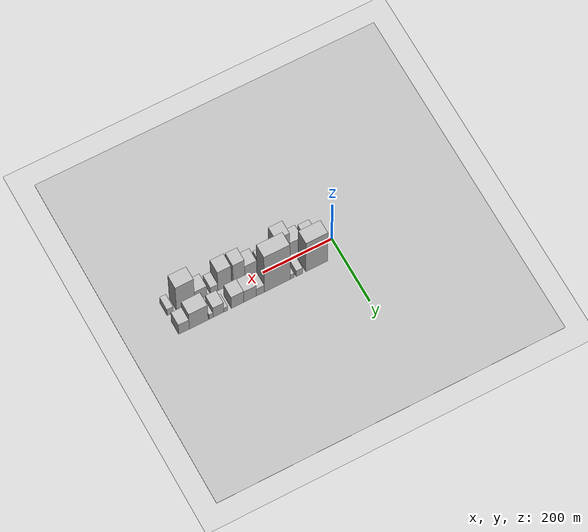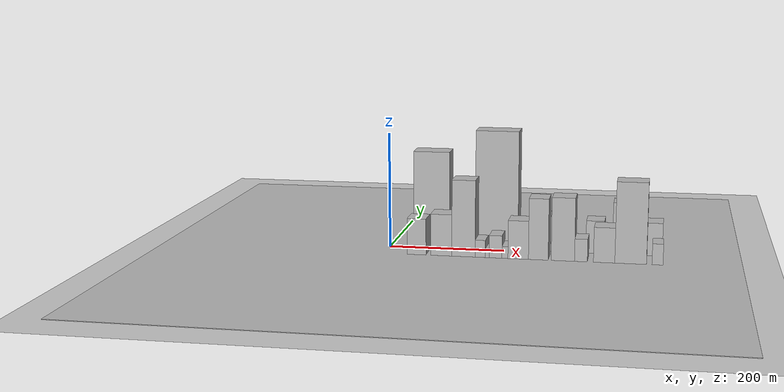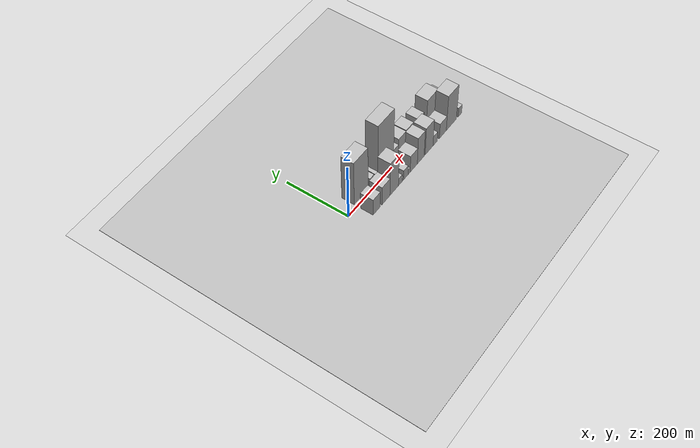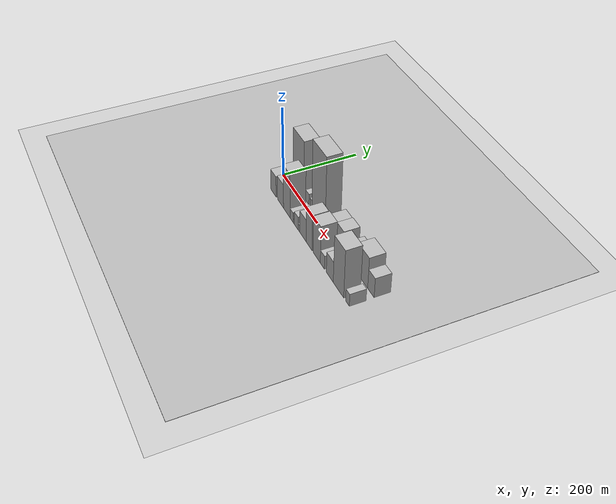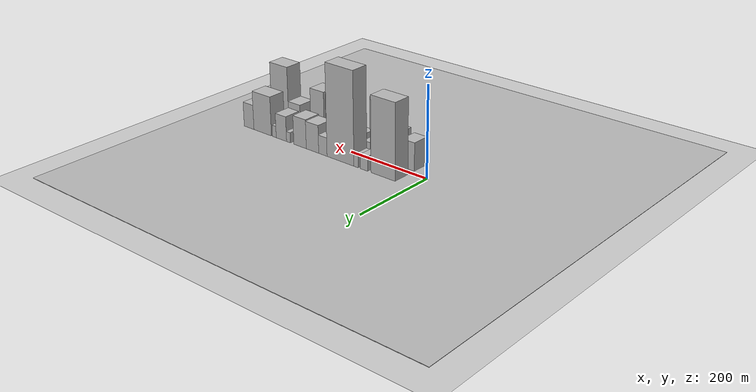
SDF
<?xml version="1.0" encoding="utf-8"?>

<sdf version="1.6">

   <world name="default">

      <gui fullscreen="0">

         <camera name="user_camera">

            <pose>-15 0 4.57585 0 0 0</pose>

            <view_controller>orbit</view_controller>

         </camera>

      </gui>

      <scene>

         <sky>

           <clouds>

             <speed>12</speed>

           </clouds>

         </sky>

         <ambient>0.4 0.4 0.4 1</ambient>

         <background>0.7 0.7 0.7 1</background>

         <shadows>1</shadows>

      </scene>

      <gravity>0 0 -9.8066</gravity>

      <magnetic_field>6e-06 2.3e-05 -4.2e-05</magnetic_field>

      <physics default="0" name="default_physics" type="ode">

         <ode>

            <solver>

               <type>quick</type>

               <iters>10</iters>

               <sor>1.0</sor>

               <use_dynamic_moi_rescaling>0</use_dynamic_moi_rescaling>

            </solver>

            <constraints>

               <cfm>0</cfm>

               <erp>0.2</erp>

               <contact_max_correcting_vel>100</contact_max_correcting_vel>

               <contact_surface_layer>0.001</contact_surface_layer>

            </constraints>

         </ode>

         <max_step_size>0.004</max_step_size>

         <real_time_factor>1</real_time_factor>

         <real_time_update_rate>250</real_time_update_rate>

      </physics>

      <light name="sun" type="directional">

         <cast_shadows>1</cast_shadows>

         <pose>0 0 10 0 0 0</pose>

         <diffuse>0.8 0.8 0.8 1</diffuse>

         <specular>0.2 0.2 0.2 1</specular>

         <attenuation>

            <range>1000</range>

            <constant>0.9</constant>

            <linear>0.01</linear>

            <quadratic>0.001</quadratic>

         </attenuation>

         <direction>-0.5 0.1 -0.9</direction>

      </light>

      <include>

         <name>ground_plane_1</name>

         <uri>model://HANNAS_ground_plane</uri>

         <pose>0 0 0  0 0 0</pose>

      </include>

      <include>

         <name>ground_plane_2</name>

         <uri>model://HANNAS_ground_plane</uri>

         <pose>100 0 0  0 0 0</pose>

      </include>

      <model name="building_1">

         <static>1</static>

         <pose frame="">71.5138 30.0000 0 0.000000 0.000000 1.570796</pose>

         <link name="link">

            <pose frame="">0 0 84.00 0 0 0</pose>

            <collision name="collision">

               <geometry>

                  <box>

                     <size>40.0000 63.0276 168.0000</size>

                  </box>

               </geometry>

               <max_contacts>10</max_contacts>

               <surface>

                  <contact>

                     <ode/>

                  </contact>

                  <bounce/>

                  <friction>

                     <torsional>

                        <ode/>

                     </torsional>

                     <ode/>

                  </friction>

               </surface>

            </collision>

            <visual name="visual">

               <cast_shadows>0</cast_shadows>

               <geometry>

                  <box>

                     <size>40.0000 63.0276 168.0000</size>

                  </box>

               </geometry>

               <material>

                  <script>

                     <uri>model://HANNAS_wall/materials/scripts</uri>

                     <uri>model://HANNAS_wall/materials/textures</uri>

                     <name>vrc/HANNAS_wall</name>

                  </script>

               </material>

            </visual>

            <self_collide>0</self_collide>

            <enable_wind>0</enable_wind>

            <kinematic>0</kinematic>

         </link>

      </model>

      <model name="building_2">

         <static>1</static>

         <pose frame="">121.5319 30.0000 0 0.000000 0.000000 1.570796</pose>

         <link name="link">

            <pose frame="">0 0 16.50 0 0 0</pose>

            <collision name="collision">

               <geometry>

                  <box>

                     <size>40.0000 19.0087 33.0000</size>

                  </box>

               </geometry>

               <max_contacts>10</max_contacts>

               <surface>

                  <contact>

                     <ode/>

                  </contact>

                  <bounce/>

                  <friction>

                     <torsional>

                        <ode/>

                     </torsional>

                     <ode/>

                  </friction>

               </surface>

            </collision>

            <visual name="visual">

               <cast_shadows>0</cast_shadows>

               <geometry>

                  <box>

                     <size>40.0000 19.0087 33.0000</size>

                  </box>

               </geometry>

               <material>

                  <script>

                     <uri>model://HANNAS_wall/materials/scripts</uri>

                     <uri>model://HANNAS_wall/materials/textures</uri>

                     <name>vrc/HANNAS_wall</name>

                  </script>

               </material>

            </visual>

            <self_collide>0</self_collide>

            <enable_wind>0</enable_wind>

            <kinematic>0</kinematic>

         </link>

      </model>

      <model name="building_3">

         <static>1</static>

         <pose frame="">142.8799 30.0000 0 0.000000 0.000000 1.570796</pose>

         <link name="link">

            <pose frame="">0 0 13.50 0 0 0</pose>

            <collision name="collision">

               <geometry>

                  <box>

                     <size>40.0000 11.6872 27.0000</size>

                  </box>

               </geometry>

               <max_contacts>10</max_contacts>

               <surface>

                  <contact>

                     <ode/>

                  </contact>

                  <bounce/>

                  <friction>

                     <torsional>

                        <ode/>

                     </torsional>

                     <ode/>

                  </friction>

               </surface>

            </collision>

            <visual name="visual">

               <cast_shadows>0</cast_shadows>

               <geometry>

                  <box>

                     <size>40.0000 11.6872 27.0000</size>

                  </box>

               </geometry>

               <material>

                  <script>

                     <uri>model://HANNAS_wall/materials/scripts</uri>

                     <uri>model://HANNAS_wall/materials/textures</uri>

                     <name>vrc/HANNAS_wall</name>

                  </script>

               </material>

            </visual>

            <self_collide>0</self_collide>

            <enable_wind>0</enable_wind>

            <kinematic>0</kinematic>

         </link>

      </model>

      <model name="building_4">

         <static>1</static>

         <pose frame="">185.7713 30.0000 0 0.000000 0.000000 1.570796</pose>

         <link name="link">

            <pose frame="">0 0 103.50 0 0 0</pose>

            <collision name="collision">

               <geometry>

                  <box>

                     <size>40.0000 74.0958 207.0000</size>

                  </box>

               </geometry>

               <max_contacts>10</max_contacts>

               <surface>

                  <contact>

                     <ode/>

                  </contact>

                  <bounce/>

                  <friction>

                     <torsional>

                        <ode/>

                     </torsional>

                     <ode/>

                  </friction>

               </surface>

            </collision>

            <visual name="visual">

               <cast_shadows>0</cast_shadows>

               <geometry>

                  <box>

                     <size>40.0000 74.0958 207.0000</size>

                  </box>

               </geometry>

               <material>

                  <script>

                     <uri>model://HANNAS_wall/materials/scripts</uri>

                     <uri>model://HANNAS_wall/materials/textures</uri>

                     <name>vrc/HANNAS_wall</name>

                  </script>

               </material>

            </visual>

            <self_collide>0</self_collide>

            <enable_wind>0</enable_wind>

            <kinematic>0</kinematic>

         </link>

      </model>

      <model name="building_5">

         <static>1</static>

         <pose frame="">234.6052 30.0000 0 0.000000 0.000000 1.570796</pose>

         <link name="link">

            <pose frame="">0 0 21.00 0 0 0</pose>

            <collision name="collision">

               <geometry>

                  <box>

                     <size>40.0000 23.5720 42.0000</size>

                  </box>

               </geometry>

               <max_contacts>10</max_contacts>

               <surface>

                  <contact>

                     <ode/>

                  </contact>

                  <bounce/>

                  <friction>

                     <torsional>

                        <ode/>

                     </torsional>

                     <ode/>

                  </friction>

               </surface>

            </collision>

            <visual name="visual">

               <cast_shadows>0</cast_shadows>

               <geometry>

                  <box>

                     <size>40.0000 23.5720 42.0000</size>

                  </box>

               </geometry>

               <material>

                  <script>

                     <uri>model://HANNAS_wall/materials/scripts</uri>

                     <uri>model://HANNAS_wall/materials/textures</uri>

                     <name>vrc/HANNAS_wall</name>

                  </script>

               </material>

            </visual>

            <self_collide>0</self_collide>

            <enable_wind>0</enable_wind>

            <kinematic>0</kinematic>

         </link>

      </model>

      <model name="building_6">

         <static>1</static>

         <pose frame="">264.1800 30.0000 0 0.000000 0.000000 1.570796</pose>

         <link name="link">

            <pose frame="">0 0 31.50 0 0 0</pose>

            <collision name="collision">

               <geometry>

                  <box>

                     <size>40.0000 35.5776 63.0000</size>

                  </box>

               </geometry>

               <max_contacts>10</max_contacts>

               <surface>

                  <contact>

                     <ode/>

                  </contact>

                  <bounce/>

                  <friction>

                     <torsional>

                        <ode/>

                     </torsional>

                     <ode/>

                  </friction>

               </surface>

            </collision>

            <visual name="visual">

               <cast_shadows>0</cast_shadows>

               <geometry>

                  <box>

                     <size>40.0000 35.5776 63.0000</size>

                  </box>

               </geometry>

               <material>

                  <script>

                     <uri>model://HANNAS_wall/materials/scripts</uri>

                     <uri>model://HANNAS_wall/materials/textures</uri>

                     <name>vrc/HANNAS_wall</name>

                  </script>

               </material>

            </visual>

            <self_collide>0</self_collide>

            <enable_wind>0</enable_wind>

            <kinematic>0</kinematic>

         </link>

      </model>

      <model name="building_7">

         <static>1</static>

         <pose frame="">300.0533 30.0000 0 0.000000 0.000000 1.570796</pose>

         <link name="link">

            <pose frame="">0 0 33.00 0 0 0</pose>

            <collision name="collision">

               <geometry>

                  <box>

                     <size>40.0000 36.1690 66.0000</size>

                  </box>

               </geometry>

               <max_contacts>10</max_contacts>

               <surface>

                  <contact>

                     <ode/>

                  </contact>

                  <bounce/>

                  <friction>

                     <torsional>

                        <ode/>

                     </torsional>

                     <ode/>

                  </friction>

               </surface>

            </collision>

            <visual name="visual">

               <cast_shadows>0</cast_shadows>

               <geometry>

                  <box>

                     <size>40.0000 36.1690 66.0000</size>

                  </box>

               </geometry>

               <material>

                  <script>

                     <uri>model://HANNAS_wall/materials/scripts</uri>

                     <uri>model://HANNAS_wall/materials/textures</uri>

                     <name>vrc/HANNAS_wall</name>

                  </script>

               </material>

            </visual>

            <self_collide>0</self_collide>

            <enable_wind>0</enable_wind>

            <kinematic>0</kinematic>

         </link>

      </model>

      <model name="building_8">

         <static>1</static>

         <pose frame="">333.9253 30.0000 0 0.000000 0.000000 1.570796</pose>

         <link name="link">

            <pose frame="">0 0 12.00 0 0 0</pose>

            <collision name="collision">

               <geometry>

                  <box>

                     <size>40.0000 11.5750 24.0000</size>

                  </box>

               </geometry>

               <max_contacts>10</max_contacts>

               <surface>

                  <contact>

                     <ode/>

                  </contact>

                  <bounce/>

                  <friction>

                     <torsional>

                        <ode/>

                     </torsional>

                     <ode/>

                  </friction>

               </surface>

            </collision>

            <visual name="visual">

               <cast_shadows>0</cast_shadows>

               <geometry>

                  <box>

                     <size>40.0000 11.5750 24.0000</size>

                  </box>

               </geometry>

               <material>

                  <script>

                     <uri>model://HANNAS_wall/materials/scripts</uri>

                     <uri>model://HANNAS_wall/materials/textures</uri>

                     <name>vrc/HANNAS_wall</name>

                  </script>

               </material>

            </visual>

            <self_collide>0</self_collide>

            <enable_wind>0</enable_wind>

            <kinematic>0</kinematic>

         </link>

      </model>

      <model name="building_9">

         <static>1</static>

         <pose frame="">355.1295 30.0000 0 0.000000 0.000000 1.570796</pose>

         <link name="link">

            <pose frame="">0 0 28.50 0 0 0</pose>

            <collision name="collision">

               <geometry>

                  <box>

                     <size>40.0000 30.8336 57.0000</size>

                  </box>

               </geometry>

               <max_contacts>10</max_contacts>

               <surface>

                  <contact>

                     <ode/>

                  </contact>

                  <bounce/>

                  <friction>

                     <torsional>

                        <ode/>

                     </torsional>

                     <ode/>

                  </friction>

               </surface>

            </collision>

            <visual name="visual">

               <cast_shadows>0</cast_shadows>

               <geometry>

                  <box>

                     <size>40.0000 30.8336 57.0000</size>

                  </box>

               </geometry>

               <material>

                  <script>

                     <uri>model://HANNAS_wall/materials/scripts</uri>

                     <uri>model://HANNAS_wall/materials/textures</uri>

                     <name>vrc/HANNAS_wall</name>

                  </script>

               </material>

            </visual>

            <self_collide>0</self_collide>

            <enable_wind>0</enable_wind>

            <kinematic>0</kinematic>

         </link>

      </model>

      <model name="building_10">

         <static>1</static>

         <pose frame="">376.1941 30.0000 0 0.000000 0.000000 1.570796</pose>

         <link name="link">

            <pose frame="">0 0 13.50 0 0 0</pose>

            <collision name="collision">

               <geometry>

                  <box>

                     <size>40.0000 11.2956 27.0000</size>

                  </box>

               </geometry>

               <max_contacts>10</max_contacts>

               <surface>

                  <contact>

                     <ode/>

                  </contact>

                  <bounce/>

                  <friction>

                     <torsional>

                        <ode/>

                     </torsional>

                     <ode/>

                  </friction>

               </surface>

            </collision>

            <visual name="visual">

               <cast_shadows>0</cast_shadows>

               <geometry>

                  <box>

                     <size>40.0000 11.2956 27.0000</size>

                  </box>

               </geometry>

               <material>

                  <script>

                     <uri>model://HANNAS_wall/materials/scripts</uri>

                     <uri>model://HANNAS_wall/materials/textures</uri>

                     <name>vrc/HANNAS_wall</name>

                  </script>

               </material>

            </visual>

            <self_collide>0</self_collide>

            <enable_wind>0</enable_wind>

            <kinematic>0</kinematic>

         </link>

      </model>

      <model name="building_11">

         <static>1</static>

         <pose frame="">411.7170 30.0000 0 0.000000 0.000000 1.570796</pose>

         <link name="link">

            <pose frame="">0 0 45.00 0 0 0</pose>

            <collision name="collision">

               <geometry>

                  <box>

                     <size>40.0000 53.7501 90.0000</size>

                  </box>

               </geometry>

               <max_contacts>10</max_contacts>

               <surface>

                  <contact>

                     <ode/>

                  </contact>

                  <bounce/>

                  <friction>

                     <torsional>

                        <ode/>

                     </torsional>

                     <ode/>

                  </friction>

               </surface>

            </collision>

            <visual name="visual">

               <cast_shadows>0</cast_shadows>

               <geometry>

                  <box>

                     <size>40.0000 53.7501 90.0000</size>

                  </box>

               </geometry>

               <material>

                  <script>

                     <uri>model://HANNAS_wall/materials/scripts</uri>

                     <uri>model://HANNAS_wall/materials/textures</uri>

                     <name>vrc/HANNAS_wall</name>

                  </script>

               </material>

            </visual>

            <self_collide>0</self_collide>

            <enable_wind>0</enable_wind>

            <kinematic>0</kinematic>

         </link>

      </model>

      <model name="building_12">

         <static>1</static>

         <pose frame="">453.7512 30.0000 0 0.000000 0.000000 1.570796</pose>

         <link name="link">

            <pose frame="">0 0 28.50 0 0 0</pose>

            <collision name="collision">

               <geometry>

                  <box>

                     <size>40.0000 30.3184 57.0000</size>

                  </box>

               </geometry>

               <max_contacts>10</max_contacts>

               <surface>

                  <contact>

                     <ode/>

                  </contact>

                  <bounce/>

                  <friction>

                     <torsional>

                        <ode/>

                     </torsional>

                     <ode/>

                  </friction>

               </surface>

            </collision>

            <visual name="visual">

               <cast_shadows>0</cast_shadows>

               <geometry>

                  <box>

                     <size>40.0000 30.3184 57.0000</size>

                  </box>

               </geometry>

               <material>

                  <script>

                     <uri>model://HANNAS_wall/materials/scripts</uri>

                     <uri>model://HANNAS_wall/materials/textures</uri>

                     <name>vrc/HANNAS_wall</name>

                  </script>

               </material>

            </visual>

            <self_collide>0</self_collide>

            <enable_wind>0</enable_wind>

            <kinematic>0</kinematic>

         </link>

      </model>

      <model name="building_13">

         <static>1</static>

         <pose frame="">56.2666 -30.0000 0 0.000000 0.000000 1.570796</pose>

         <link name="link">

            <pose frame="">0 0 31.50 0 0 0</pose>

            <collision name="collision">

               <geometry>

                  <box>

                     <size>40.0000 32.5331 63.0000</size>

                  </box>

               </geometry>

               <max_contacts>10</max_contacts>

               <surface>

                  <contact>

                     <ode/>

                  </contact>

                  <bounce/>

                  <friction>

                     <torsional>

                        <ode/>

                     </torsional>

                     <ode/>

                  </friction>

               </surface>

            </collision>

            <visual name="visual">

               <cast_shadows>0</cast_shadows>

               <geometry>

                  <box>

                     <size>40.0000 32.5331 63.0000</size>

                  </box>

               </geometry>

               <material>

                  <script>

                     <uri>model://HANNAS_wall/materials/scripts</uri>

                     <uri>model://HANNAS_wall/materials/textures</uri>

                     <name>vrc/HANNAS_wall</name>

                  </script>

               </material>

            </visual>

            <self_collide>0</self_collide>

            <enable_wind>0</enable_wind>

            <kinematic>0</kinematic>

         </link>

      </model>

      <model name="building_14">

         <static>1</static>

         <pose frame="">98.8901 -30.0000 0 0.000000 0.000000 1.570796</pose>

         <link name="link">

            <pose frame="">0 0 36.00 0 0 0</pose>

            <collision name="collision">

               <geometry>

                  <box>

                     <size>40.0000 36.7139 72.0000</size>

                  </box>

               </geometry>

               <max_contacts>10</max_contacts>

               <surface>

                  <contact>

                     <ode/>

                  </contact>

                  <bounce/>

                  <friction>

                     <torsional>

                        <ode/>

                     </torsional>

                     <ode/>

                  </friction>

               </surface>

            </collision>

            <visual name="visual">

               <cast_shadows>0</cast_shadows>

               <geometry>

                  <box>

                     <size>40.0000 36.7139 72.0000</size>

                  </box>

               </geometry>

               <material>

                  <script>

                     <uri>model://HANNAS_wall/materials/scripts</uri>

                     <uri>model://HANNAS_wall/materials/textures</uri>

                     <name>vrc/HANNAS_wall</name>

                  </script>

               </material>

            </visual>

            <self_collide>0</self_collide>

            <enable_wind>0</enable_wind>

            <kinematic>0</kinematic>

         </link>

      </model>

      <model name="building_15">

         <static>1</static>

         <pose frame="">137.1779 -30.0000 0 0.000000 0.000000 1.570796</pose>

         <link name="link">

            <pose frame="">0 0 66.00 0 0 0</pose>

            <collision name="collision">

               <geometry>

                  <box>

                     <size>40.0000 39.8617 132.0000</size>

                  </box>

               </geometry>

               <max_contacts>10</max_contacts>

               <surface>

                  <contact>

                     <ode/>

                  </contact>

                  <bounce/>

                  <friction>

                     <torsional>

                        <ode/>

                     </torsional>

                     <ode/>

                  </friction>

               </surface>

            </collision>

            <visual name="visual">

               <cast_shadows>0</cast_shadows>

               <geometry>

                  <box>

                     <size>40.0000 39.8617 132.0000</size>

                  </box>

               </geometry>

               <material>

                  <script>

                     <uri>model://HANNAS_wall/materials/scripts</uri>

                     <uri>model://HANNAS_wall/materials/textures</uri>

                     <name>vrc/HANNAS_wall</name>

                  </script>

               </material>

            </visual>

            <self_collide>0</self_collide>

            <enable_wind>0</enable_wind>

            <kinematic>0</kinematic>

         </link>

      </model>

      <model name="building_16">

         <static>1</static>

         <pose frame="">165.7692 -30.0000 0 0.000000 0.000000 1.570796</pose>

         <link name="link">

            <pose frame="">0 0 15.00 0 0 0</pose>

            <collision name="collision">

               <geometry>

                  <box>

                     <size>40.0000 17.3209 30.0000</size>

                  </box>

               </geometry>

               <max_contacts>10</max_contacts>

               <surface>

                  <contact>

                     <ode/>

                  </contact>

                  <bounce/>

                  <friction>

                     <torsional>

                        <ode/>

                     </torsional>

                     <ode/>

                  </friction>

               </surface>

            </collision>

            <visual name="visual">

               <cast_shadows>0</cast_shadows>

               <geometry>

                  <box>

                     <size>40.0000 17.3209 30.0000</size>

                  </box>

               </geometry>

               <material>

                  <script>

                     <uri>model://HANNAS_wall/materials/scripts</uri>

                     <uri>model://HANNAS_wall/materials/textures</uri>

                     <name>vrc/HANNAS_wall</name>

                  </script>

               </material>

            </visual>

            <self_collide>0</self_collide>

            <enable_wind>0</enable_wind>

            <kinematic>0</kinematic>

         </link>

      </model>

      <model name="building_17">

         <static>1</static>

         <pose frame="">177.6760 -30.0000 0 0.000000 0.000000 1.570796</pose>

         <link name="link">

            <pose frame="">0 0 7.50 0 0 0</pose>

            <collision name="collision">

               <geometry>

                  <box>

                     <size>40.0000 6.4927 15.0000</size>

                  </box>

               </geometry>

               <max_contacts>10</max_contacts>

               <surface>

                  <contact>

                     <ode/>

                  </contact>

                  <bounce/>

                  <friction>

                     <torsional>

                        <ode/>

                     </torsional>

                     <ode/>

                  </friction>

               </surface>

            </collision>

            <visual name="visual">

               <cast_shadows>0</cast_shadows>

               <geometry>

                  <box>

                     <size>40.0000 6.4927 15.0000</size>

                  </box>

               </geometry>

               <material>

                  <script>

                     <uri>model://HANNAS_wall/materials/scripts</uri>

                     <uri>model://HANNAS_wall/materials/textures</uri>

                     <name>vrc/HANNAS_wall</name>

                  </script>

               </material>

            </visual>

            <self_collide>0</self_collide>

            <enable_wind>0</enable_wind>

            <kinematic>0</kinematic>

         </link>

      </model>

      <model name="building_18">

         <static>1</static>

         <pose frame="">191.7730 -30.0000 0 0.000000 0.000000 1.570796</pose>

         <link name="link">

            <pose frame="">0 0 19.50 0 0 0</pose>

            <collision name="collision">

               <geometry>

                  <box>

                     <size>40.0000 21.7013 39.0000</size>

                  </box>

               </geometry>

               <max_contacts>10</max_contacts>

               <surface>

                  <contact>

                     <ode/>

                  </contact>

                  <bounce/>

                  <friction>

                     <torsional>

                        <ode/>

                     </torsional>

                     <ode/>

                  </friction>

               </surface>

            </collision>

            <visual name="visual">

               <cast_shadows>0</cast_shadows>

               <geometry>

                  <box>

                     <size>40.0000 21.7013 39.0000</size>

                  </box>

               </geometry>

               <material>

                  <script>

                     <uri>model://HANNAS_wall/materials/scripts</uri>

                     <uri>model://HANNAS_wall/materials/textures</uri>

                     <name>vrc/HANNAS_wall</name>

                  </script>

               </material>

            </visual>

            <self_collide>0</self_collide>

            <enable_wind>0</enable_wind>

            <kinematic>0</kinematic>

         </link>

      </model>

      <model name="building_19">

         <static>1</static>

         <pose frame="">207.7393 -30.0000 0 0.000000 0.000000 1.570796</pose>

         <link name="link">

            <pose frame="">0 0 10.50 0 0 0</pose>

            <collision name="collision">

               <geometry>

                  <box>

                     <size>40.0000 10.2315 21.0000</size>

                  </box>

               </geometry>

               <max_contacts>10</max_contacts>

               <surface>

                  <contact>

                     <ode/>

                  </contact>

                  <bounce/>

                  <friction>

                     <torsional>

                        <ode/>

                     </torsional>

                     <ode/>

                  </friction>

               </surface>

            </collision>

            <visual name="visual">

               <cast_shadows>0</cast_shadows>

               <geometry>

                  <box>

                     <size>40.0000 10.2315 21.0000</size>

                  </box>

               </geometry>

               <material>

                  <script>

                     <uri>model://HANNAS_wall/materials/scripts</uri>

                     <uri>model://HANNAS_wall/materials/textures</uri>

                     <name>vrc/HANNAS_wall</name>

                  </script>

               </material>

            </visual>

            <self_collide>0</self_collide>

            <enable_wind>0</enable_wind>

            <kinematic>0</kinematic>

         </link>

      </model>

      <model name="building_20">

         <static>1</static>

         <pose frame="">230.1710 -30.0000 0 0.000000 0.000000 1.570796</pose>

         <link name="link">

            <pose frame="">0 0 33.00 0 0 0</pose>

            <collision name="collision">

               <geometry>

                  <box>

                     <size>40.0000 34.6318 66.0000</size>

                  </box>

               </geometry>

               <max_contacts>10</max_contacts>

               <surface>

                  <contact>

                     <ode/>

                  </contact>

                  <bounce/>

                  <friction>

                     <torsional>

                        <ode/>

                     </torsional>

                     <ode/>

                  </friction>

               </surface>

            </collision>

            <visual name="visual">

               <cast_shadows>0</cast_shadows>

               <geometry>

                  <box>

                     <size>40.0000 34.6318 66.0000</size>

                  </box>

               </geometry>

               <material>

                  <script>

                     <uri>model://HANNAS_wall/materials/scripts</uri>

                     <uri>model://HANNAS_wall/materials/textures</uri>

                     <name>vrc/HANNAS_wall</name>

                  </script>

               </material>

            </visual>

            <self_collide>0</self_collide>

            <enable_wind>0</enable_wind>

            <kinematic>0</kinematic>

         </link>

      </model>

      <model name="building_21">

         <static>1</static>

         <pose frame="">264.0801 -30.0000 0 0.000000 0.000000 1.570796</pose>

         <link name="link">

            <pose frame="">0 0 52.50 0 0 0</pose>

            <collision name="collision">

               <geometry>

                  <box>

                     <size>40.0000 33.1863 105.0000</size>

                  </box>

               </geometry>

               <max_contacts>10</max_contacts>

               <surface>

                  <contact>

                     <ode/>

                  </contact>

                  <bounce/>

                  <friction>

                     <torsional>

                        <ode/>

                     </torsional>

                     <ode/>

                  </friction>

               </surface>

            </collision>

            <visual name="visual">

               <cast_shadows>0</cast_shadows>

               <geometry>

                  <box>

                     <size>40.0000 33.1863 105.0000</size>

                  </box>

               </geometry>

               <material>

                  <script>

                     <uri>model://HANNAS_wall/materials/scripts</uri>

                     <uri>model://HANNAS_wall/materials/textures</uri>

                     <name>vrc/HANNAS_wall</name>

                  </script>

               </material>

            </visual>

            <self_collide>0</self_collide>

            <enable_wind>0</enable_wind>

            <kinematic>0</kinematic>

         </link>

      </model>

      <model name="building_22">

         <static>1</static>

         <pose frame="">305.1763 -30.0000 0 0.000000 0.000000 1.570796</pose>

         <link name="link">

            <pose frame="">0 0 54.00 0 0 0</pose>

            <collision name="collision">

               <geometry>

                  <box>

                     <size>40.0000 39.0061 108.0000</size>

                  </box>

               </geometry>

               <max_contacts>10</max_contacts>

               <surface>

                  <contact>

                     <ode/>

                  </contact>

                  <bounce/>

                  <friction>

                     <torsional>

                        <ode/>

                     </torsional>

                     <ode/>

                  </friction>

               </surface>

            </collision>

            <visual name="visual">

               <cast_shadows>0</cast_shadows>

               <geometry>

                  <box>

                     <size>40.0000 39.0061 108.0000</size>

                  </box>

               </geometry>

               <material>

                  <script>

                     <uri>model://HANNAS_wall/materials/scripts</uri>

                     <uri>model://HANNAS_wall/materials/textures</uri>

                     <name>vrc/HANNAS_wall</name>

                  </script>

               </material>

            </visual>

            <self_collide>0</self_collide>

            <enable_wind>0</enable_wind>

            <kinematic>0</kinematic>

         </link>

      </model>

      <model name="building_23">

         <static>1</static>

         <pose frame="">335.3879 -30.0000 0 0.000000 0.000000 1.570796</pose>

         <link name="link">

            <pose frame="">0 0 19.50 0 0 0</pose>

            <collision name="collision">

               <geometry>

                  <box>

                     <size>40.0000 21.4172 39.0000</size>

                  </box>

               </geometry>

               <max_contacts>10</max_contacts>

               <surface>

                  <contact>

                     <ode/>

                  </contact>

                  <bounce/>

                  <friction>

                     <torsional>

                        <ode/>

                     </torsional>

                     <ode/>

                  </friction>

               </surface>

            </collision>

            <visual name="visual">

               <cast_shadows>0</cast_shadows>

               <geometry>

                  <box>

                     <size>40.0000 21.4172 39.0000</size>

                  </box>

               </geometry>

               <material>

                  <script>

                     <uri>model://HANNAS_wall/materials/scripts</uri>

                     <uri>model://HANNAS_wall/materials/textures</uri>

                     <name>vrc/HANNAS_wall</name>

                  </script>

               </material>

            </visual>

            <self_collide>0</self_collide>

            <enable_wind>0</enable_wind>

            <kinematic>0</kinematic>

         </link>

      </model>

      <model name="building_24">

         <static>1</static>

         <pose frame="">373.7685 -30.0000 0 0.000000 0.000000 1.570796</pose>

         <link name="link">

            <pose frame="">0 0 30.00 0 0 0</pose>

            <collision name="collision">

               <geometry>

                  <box>

                     <size>40.0000 35.3440 60.0000</size>

                  </box>

               </geometry>

               <max_contacts>10</max_contacts>

               <surface>

                  <contact>

                     <ode/>

                  </contact>

                  <bounce/>

                  <friction>

                     <torsional>

                        <ode/>

                     </torsional>

                     <ode/>

                  </friction>

               </surface>

            </collision>

            <visual name="visual">

               <cast_shadows>0</cast_shadows>

               <geometry>

                  <box>

                     <size>40.0000 35.3440 60.0000</size>

                  </box>

               </geometry>

               <material>

                  <script>

                     <uri>model://HANNAS_wall/materials/scripts</uri>

                     <uri>model://HANNAS_wall/materials/textures</uri>

                     <name>vrc/HANNAS_wall</name>

                  </script>

               </material>

            </visual>

            <self_collide>0</self_collide>

            <enable_wind>0</enable_wind>

            <kinematic>0</kinematic>

         </link>

      </model>

      <model name="building_25">

         <static>1</static>

         <pose frame="">417.4669 -30.0000 0 0.000000 0.000000 1.570796</pose>

         <link name="link">

            <pose frame="">0 0 69.00 0 0 0</pose>

            <collision name="collision">

               <geometry>

                  <box>

                     <size>40.0000 52.0527 138.0000</size>

                  </box>

               </geometry>

               <max_contacts>10</max_contacts>

               <surface>

                  <contact>

                     <ode/>

                  </contact>

                  <bounce/>

                  <friction>

                     <torsional>

                        <ode/>

                     </torsional>

                     <ode/>

                  </friction>

               </surface>

            </collision>

            <visual name="visual">

               <cast_shadows>0</cast_shadows>

               <geometry>

                  <box>

                     <size>40.0000 52.0527 138.0000</size>

                  </box>

               </geometry>

               <material>

                  <script>

                     <uri>model://HANNAS_wall/materials/scripts</uri>

                     <uri>model://HANNAS_wall/materials/textures</uri>

                     <name>vrc/HANNAS_wall</name>

                  </script>

               </material>

            </visual>

            <self_collide>0</self_collide>

            <enable_wind>0</enable_wind>

            <kinematic>0</kinematic>

         </link>

      </model>

      <model name="building_26">

         <static>1</static>

         <pose frame="">461.4965 -30.0000 0 0.000000 0.000000 1.570796</pose>

         <link name="link">

            <pose frame="">0 0 18.00 0 0 0</pose>

            <collision name="collision">

               <geometry>

                  <box>

                     <size>40.0000 18.0065 36.0000</size>

                  </box>

               </geometry>

               <max_contacts>10</max_contacts>

               <surface>

                  <contact>

                     <ode/>

                  </contact>

                  <bounce/>

                  <friction>

                     <torsional>

                        <ode/>

                     </torsional>

                     <ode/>

                  </friction>

               </surface>

            </collision>

            <visual name="visual">

               <cast_shadows>0</cast_shadows>

               <geometry>

                  <box>

                     <size>40.0000 18.0065 36.0000</size>

                  </box>

               </geometry>

               <material>

                  <script>

                     <uri>model://HANNAS_wall/materials/scripts</uri>

                     <uri>model://HANNAS_wall/materials/textures</uri>

                     <name>vrc/HANNAS_wall</name>

                  </script>

               </material>

            </visual>

            <self_collide>0</self_collide>

            <enable_wind>0</enable_wind>

            <kinematic>0</kinematic>

         </link>

      </model>

   </world>

</sdf>

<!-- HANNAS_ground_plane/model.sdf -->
<sdf version="1.4">
<model name="HANNAS_ground_plane">
  <static>true</static>
    <link name="link">
      <collision name="collision">
        <geometry>
          <plane>
            <normal>0 0 1</normal>
            <size>1000 1000</size>
          </plane>
        </geometry>
        <surface>
          <friction>
            <ode>
              <mu>100</mu>
              <mu2>50</mu2>
            </ode>
          </friction>
        </surface>
      </collision>
      <visual name="visual">
        <cast_shadows>false</cast_shadows>
        <geometry>
          <plane>
            <normal>0 0 1</normal>
            <size>1000 1000</size>
          </plane>
        </geometry>
        <material>
          <script>
            <uri>model://HANNAS_ground_plane/materials/scripts/HANNAS_ground_plane.material</uri>
	    <uri>model://HANNAS_ground_plane/materials/textures</uri>
            <name>HANNASGroundPlane/Image</name>
          </script>
        </material>
      </visual>
    </link>
  </model>
</sdf>
